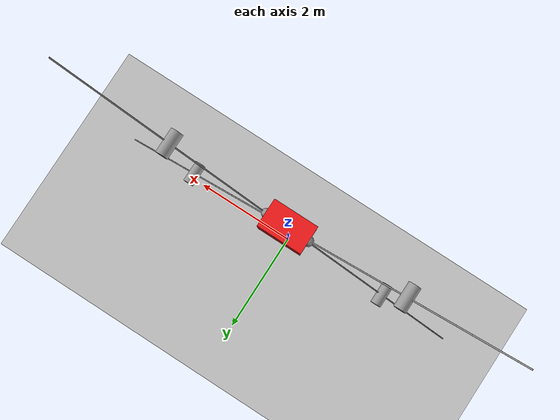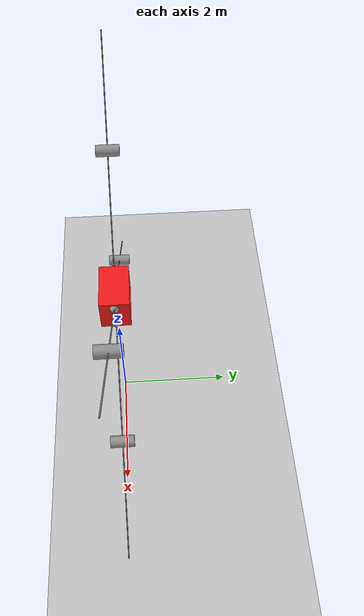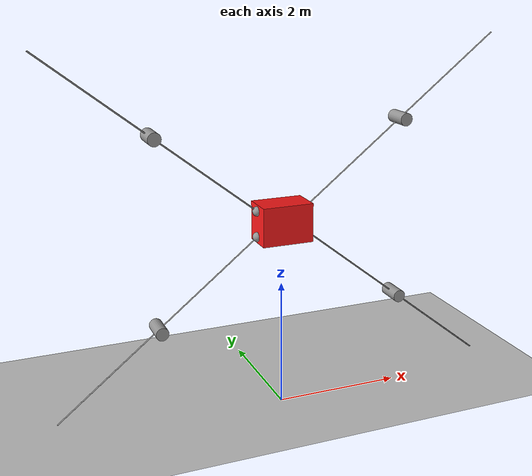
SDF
<?xml version="1.0" ?>
<sdf version="1.8">
    <world name="wallbot_world">
        <physics name="1ms" type="ode">
            <max_step_size>0.001</max_step_size>
            <real_time_factor>1.0</real_time_factor>
        </physics>
        <plugin
            filename="libignition-gazebo-physics-system.so"
            name="ignition::gazebo::systems::Physics">
        </plugin>
        <plugin
            filename="libignition-gazebo-user-commands-system.so"
            name="ignition::gazebo::systems::UserCommands">
        </plugin>
        <plugin
            filename="libignition-gazebo-scene-broadcaster-system.so"
            name="ignition::gazebo::systems::SceneBroadcaster">
        </plugin>
        <plugin
            filename="libignition-gazebo-sensors-system.so"
            name="ignition::gazebo::systems::Sensors">
            <render_engine>ogre2</render_engine>
        </plugin>
        <plugin
            filename="libignition-gazebo-contact-system.so"
            name="ignition::gazebo::systems::Contact">
        </plugin>

        <light type="directional" name="sun">
            <cast_shadows>true</cast_shadows>
            <pose>0 0 10 0 0 0</pose>
            <diffuse>0.8 0.8 0.8 1</diffuse>
            <specular>0.2 0.2 0.2 1</specular>
            <attenuation>
                <range>1000</range>
                <constant>0.9</constant>
                <linear>0.01</linear>
                <quadratic>0.001</quadratic>
            </attenuation>
            <direction>-0.5 0.1 -0.9</direction>
        </light>

        <model name="ground_plane">
            <static>true</static>
            <link name="link">
                <collision name="collision">
                <geometry>
                    <plane>
                    <normal>0 0 1</normal>
                    </plane>
                </geometry>
                </collision>
                <visual name="visual">
                <geometry>
                    <plane>
                    <normal>0 0 1</normal>
                    <size>100 100</size>
                    </plane>
                </geometry>
                <material>
                    <ambient>0.8 0.8 0.8 1</ambient>
                    <diffuse>0.8 0.8 0.8 1</diffuse>
                    <specular>0.8 0.8 0.8 1</specular>
                </material>
                </visual>
            </link>
        </model>

        <include>
          <uri>model://Wallbot_V3_Robot</uri>
          <name>wallbot</name>
          <pose>0 0 3 0 0 0</pose>
        </include>

    </world>
</sdf>

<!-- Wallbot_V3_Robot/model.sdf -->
<sdf version='1.7'>
  <model name='Wallbot_V2_Robot'>
    <link name='link_0'>
      <inertial>
        <mass>1</mass>
        <inertia>
          <ixx>0.166667</ixx>
          <ixy>0</ixy>
          <ixz>0</ixz>
          <iyy>0.166667</iyy>
          <iyz>0</iyz>
          <izz>0.166667</izz>
        </inertia>
        <pose>0 0 0 0 -0 0</pose>
      </inertial>
      <pose>0.015 0 0.005 0 -0 0</pose>
      <self_collide>0</self_collide>
      <kinematic>0</kinematic>
      <enable_wind>0</enable_wind>
      <visual name='visual'>
        <pose>0 0 0 0 -0 0</pose>
        <geometry>
          <box>
            <size>0.8 0.5 0.6</size>
          </box>
        </geometry>
        <material>
          <lighting>1</lighting>
          <script>
            <uri>file://media/materials/scripts/gazebo.material</uri>
            <name>Gazebo/Grey</name>
          </script>
          <shader type='pixel'>
            <normal_map>__default__</normal_map>
          </shader>
          <ambient>1 0.1 0.1 1</ambient>
          <diffuse>0.7 0.7 0.7 1</diffuse>
          <specular>0.01 0.01 0.01 1</specular>
          <emissive>0 0 0 1</emissive>
        </material>
        <transparency>0</transparency>
        <cast_shadows>1</cast_shadows>
      </visual>
      <collision name='collision'>
        <laser_retro>0</laser_retro>
        <max_contacts>10</max_contacts>
        <pose>0 0 0 0 -0 0</pose>
        <geometry>
          <box>
            <size>0.8 0.5 0.6</size>
          </box>
        </geometry>
        <surface>
          <friction>
            <ode>
              <mu>0</mu>
              <mu2>0</mu2>
              <fdir1>0 0 0</fdir1>
              <slip1>0</slip1>
              <slip2>0</slip2>
            </ode>
            <torsional>
              <coefficient>0</coefficient>
              <patch_radius>0</patch_radius>
              <surface_radius>0</surface_radius>
              <use_patch_radius>0</use_patch_radius>
              <ode>
                <slip>0</slip>
              </ode>
            </torsional>
          </friction>
          <bounce>
            <restitution_coefficient>0</restitution_coefficient>
            <threshold>1e+06</threshold>
          </bounce>
          <contact>
            <collide_without_contact>0</collide_without_contact>
            <collide_without_contact_bitmask>1</collide_without_contact_bitmask>
            <collide_bitmask>1</collide_bitmask>
            <ode>
              <soft_cfm>0</soft_cfm>
              <soft_erp>0.2</soft_erp>
              <kp>1e+13</kp>
              <kd>1</kd>
              <max_vel>0.01</max_vel>
              <min_depth>0</min_depth>
            </ode>
            <bullet>
              <split_impulse>1</split_impulse>
              <split_impulse_penetration_threshold>-0.01</split_impulse_penetration_threshold>
              <soft_cfm>0</soft_cfm>
              <soft_erp>0.2</soft_erp>
              <kp>1e+13</kp>
              <kd>1</kd>
            </bullet>
          </contact>
        </surface>
      </collision>
    </link>
    <link name='link_0_0'>
      <inertial>
        <mass>1</mass>
        <inertia>
          <ixx>0.145833</ixx>
          <ixy>0</ixy>
          <ixz>0</ixz>
          <iyy>0.145833</iyy>
          <iyz>0</iyz>
          <izz>0.125</izz>
        </inertia>
        <pose>0 0 -2 0 -0 0</pose>
      </inertial>
      <pose>0.415 0 0.205 3.14159 -0.901593 3.14159</pose>

      <self_collide>0</self_collide>
      <kinematic>0</kinematic>
      <enable_wind>0</enable_wind>
      <visual name='visual'>
        <pose>0 0 -2 0 -0 0</pose>
        <geometry>
          <cylinder>
            <radius>0.01</radius>
            <length>4</length>
          </cylinder>
        </geometry>
        <material>
          <lighting>1</lighting>
          <script>
            <uri>file://media/materials/scripts/gazebo.material</uri>
            <name>Gazebo/Grey</name>
          </script>
          <shader type='pixel'>
            <normal_map>__default__</normal_map>
          </shader>
          <ambient>0.3 0.3 0.3 1</ambient>
          <diffuse>0.7 0.7 0.7 1</diffuse>
          <specular>0.01 0.01 0.01 1</specular>
          <emissive>0 0 0 1</emissive>
        </material>
        <transparency>0</transparency>
        <cast_shadows>1</cast_shadows>
      </visual>
      <collision name='collision'>
        <laser_retro>0</laser_retro>
        <max_contacts>10</max_contacts>
        <pose>0 0 -2 0 -0 0</pose>
        <geometry>
          <cylinder>
            <radius>0.01</radius>
            <length>4</length>
          </cylinder>
        </geometry>
        <surface>
          <friction>
            <ode>
              <mu>0</mu>
              <mu2>0</mu2>
              <fdir1>0 0 0</fdir1>
              <slip1>0</slip1>
              <slip2>0</slip2>
            </ode>
            <torsional>
              <coefficient>0</coefficient>
              <patch_radius>0</patch_radius>
              <surface_radius>0</surface_radius>
              <use_patch_radius>0</use_patch_radius>
              <ode>
                <slip>0</slip>
              </ode>
            </torsional>
          </friction>
          <bounce>
            <restitution_coefficient>0</restitution_coefficient>
            <threshold>1e+06</threshold>
          </bounce>
          <contact>
            <collide_without_contact>0</collide_without_contact>
            <collide_without_contact_bitmask>1</collide_without_contact_bitmask>
            <collide_bitmask>1</collide_bitmask>
            <ode>
              <soft_cfm>0</soft_cfm>
              <soft_erp>0.2</soft_erp>
              <kp>1e+13</kp>
              <kd>1</kd>
              <max_vel>0.01</max_vel>
              <min_depth>0</min_depth>
            </ode>
            <bullet>
              <split_impulse>1</split_impulse>
              <split_impulse_penetration_threshold>-0.01</split_impulse_penetration_threshold>
              <soft_cfm>0</soft_cfm>
              <soft_erp>0.2</soft_erp>
              <kp>1e+13</kp>
              <kd>1</kd>
            </bullet>
          </contact>
        </surface>
      </collision>
    </link>
    <link name='link_0_0_clone'>
      <inertial>
        <mass>1</mass>
        <inertia>
          <ixx>0.145833</ixx>
          <ixy>0</ixy>
          <ixz>0</ixz>
          <iyy>0.145833</iyy>
          <iyz>0</iyz>
          <izz>0.125</izz>
        </inertia>
        <pose>0 0 -2 0 -0 0</pose>
      </inertial>
      <pose>-0.385 0 0.205 -3.14159 0.9 -3.14159</pose>

      <self_collide>0</self_collide>
      <kinematic>0</kinematic>
      <enable_wind>0</enable_wind>
      <visual name='visual_0'>
        <pose>0 0 -2 0 -0 0</pose>
        <geometry>
          <cylinder>
            <radius>0.01</radius>
            <length>4</length>
          </cylinder>
        </geometry>
        <material>
          <lighting>1</lighting>
          <script>
            <uri>file://media/materials/scripts/gazebo.material</uri>
            <name>Gazebo/Grey</name>
          </script>
          <shader type='pixel'>
            <normal_map>__default__</normal_map>
          </shader>
          <ambient>0.3 0.3 0.3 1</ambient>
          <diffuse>0.7 0.7 0.7 1</diffuse>
          <specular>0.01 0.01 0.01 1</specular>
          <emissive>0 0 0 1</emissive>
        </material>
        <transparency>0</transparency>
        <cast_shadows>1</cast_shadows>
      </visual>
      <collision name='collision'>
        <laser_retro>0</laser_retro>
        <max_contacts>10</max_contacts>
        <pose>0 0 -2 0 -0 0</pose>
        <geometry>
          <cylinder>
            <radius>0.01</radius>
            <length>4</length>
          </cylinder>
        </geometry>
        <surface>
          <friction>
            <ode>
              <mu>0</mu>
              <mu2>0</mu2>
              <fdir1>0 0 0</fdir1>
              <slip1>0</slip1>
              <slip2>0</slip2>
            </ode>
            <torsional>
              <coefficient>0</coefficient>
              <patch_radius>0</patch_radius>
              <surface_radius>0</surface_radius>
              <use_patch_radius>0</use_patch_radius>
              <ode>
                <slip>0</slip>
              </ode>
            </torsional>
          </friction>
          <bounce>
            <restitution_coefficient>0</restitution_coefficient>
            <threshold>1e+06</threshold>
          </bounce>
          <contact>
            <collide_without_contact>0</collide_without_contact>
            <collide_without_contact_bitmask>1</collide_without_contact_bitmask>
            <collide_bitmask>1</collide_bitmask>
            <ode>
              <soft_cfm>0</soft_cfm>
              <soft_erp>0.2</soft_erp>
              <kp>1e+13</kp>
              <kd>1</kd>
              <max_vel>0.01</max_vel>
              <min_depth>0</min_depth>
            </ode>
            <bullet>
              <split_impulse>1</split_impulse>
              <split_impulse_penetration_threshold>-0.01</split_impulse_penetration_threshold>
              <soft_cfm>0</soft_cfm>
              <soft_erp>0.2</soft_erp>
              <kp>1e+13</kp>
              <kd>1</kd>
            </bullet>
          </contact>
        </surface>
      </collision>
    </link>
    <link name='link_0_0_clone_0'>
      <inertial>
        <mass>1</mass>
        <inertia>
          <ixx>0.145833</ixx>
          <ixy>0</ixy>
          <ixz>0</ixz>
          <iyy>0.145833</iyy>
          <iyz>0</iyz>
          <izz>0.125</izz>
        </inertia>
        <pose>0 0 -2 0 -0 0</pose>
      </inertial>
      <pose>0.415 0 -0.195 1.1e-05 -0.9 -5e-06</pose>

      <self_collide>0</self_collide>
      <kinematic>0</kinematic>
      <enable_wind>0</enable_wind>
      <visual name='visual_0'>
        <pose>0 0 -2 0 -0 0</pose>
        <geometry>
          <cylinder>
            <radius>0.01</radius>
            <length>4</length>
          </cylinder>
        </geometry>
        <material>
          <lighting>1</lighting>
          <script>
            <uri>file://media/materials/scripts/gazebo.material</uri>
            <name>Gazebo/Grey</name>
          </script>
          <shader type='pixel'>
            <normal_map>__default__</normal_map>
          </shader>
          <ambient>0.3 0.3 0.3 1</ambient>
          <diffuse>0.7 0.7 0.7 1</diffuse>
          <specular>0.01 0.01 0.01 1</specular>
          <emissive>0 0 0 1</emissive>
        </material>
        <transparency>0</transparency>
        <cast_shadows>1</cast_shadows>
      </visual>
      <collision name='collision'>
        <laser_retro>0</laser_retro>
        <max_contacts>10</max_contacts>
        <pose>0 0 -2 0 -0 0</pose>
        <geometry>
          <cylinder>
            <radius>0.01</radius>
            <length>4</length>
          </cylinder>
        </geometry>
        <surface>
          <friction>
            <ode>
              <mu>0</mu>
              <mu2>0</mu2>
              <fdir1>0 0 0</fdir1>
              <slip1>0</slip1>
              <slip2>0</slip2>
            </ode>
            <torsional>
              <coefficient>0</coefficient>
              <patch_radius>0</patch_radius>
              <surface_radius>0</surface_radius>
              <use_patch_radius>0</use_patch_radius>
              <ode>
                <slip>0</slip>
              </ode>
            </torsional>
          </friction>
          <bounce>
            <restitution_coefficient>0</restitution_coefficient>
            <threshold>1e+06</threshold>
          </bounce>
          <contact>
            <collide_without_contact>0</collide_without_contact>
            <collide_without_contact_bitmask>1</collide_without_contact_bitmask>
            <collide_bitmask>1</collide_bitmask>
            <ode>
              <soft_cfm>0</soft_cfm>
              <soft_erp>0.2</soft_erp>
              <kp>1e+13</kp>
              <kd>1</kd>
              <max_vel>0.01</max_vel>
              <min_depth>0</min_depth>
            </ode>
            <bullet>
              <split_impulse>1</split_impulse>
              <split_impulse_penetration_threshold>-0.01</split_impulse_penetration_threshold>
              <soft_cfm>0</soft_cfm>
              <soft_erp>0.2</soft_erp>
              <kp>1e+13</kp>
              <kd>1</kd>
            </bullet>
          </contact>
        </surface>
      </collision>
    </link>
    <link name='link_0_0_clone_1'>
      <inertial>
        <mass>1</mass>
        <inertia>
          <ixx>0.145833</ixx>
          <ixy>0</ixy>
          <ixz>0</ixz>
          <iyy>0.145833</iyy>
          <iyz>0</iyz>
          <izz>0.125</izz>
        </inertia>
        <pose>0 0 -2 0 -0 0</pose>
      </inertial>
      <pose>-0.385 0 -0.195 1.1e-05 0.9 -5e-06</pose>

      <self_collide>0</self_collide>
      <kinematic>0</kinematic>
      <enable_wind>0</enable_wind>
      <visual name='visual_0'>
        <pose>0 0 -2 0 -0 0</pose>
        <geometry>
          <cylinder>
            <radius>0.01</radius>
            <length>4</length>
          </cylinder>
        </geometry>
        <material>
          <lighting>1</lighting>
          <script>
            <uri>file://media/materials/scripts/gazebo.material</uri>
            <name>Gazebo/Grey</name>
          </script>
          <shader type='pixel'>
            <normal_map>__default__</normal_map>
          </shader>
          <ambient>0.3 0.3 0.3 1</ambient>
          <diffuse>0.7 0.7 0.7 1</diffuse>
          <specular>0.01 0.01 0.01 1</specular>
          <emissive>0 0 0 1</emissive>
        </material>
        <transparency>0</transparency>
        <cast_shadows>1</cast_shadows>
      </visual>
      <collision name='collision'>
        <laser_retro>0</laser_retro>
        <max_contacts>10</max_contacts>
        <pose>0 0 -2 0 -0 0</pose>
        <geometry>
          <cylinder>
            <radius>0.01</radius>
            <length>4</length>
          </cylinder>
        </geometry>
        <surface>
          <friction>
            <ode>
              <mu>0</mu>
              <mu2>0</mu2>
              <fdir1>0 0 0</fdir1>
              <slip1>0</slip1>
              <slip2>0</slip2>
            </ode>
            <torsional>
              <coefficient>0</coefficient>
              <patch_radius>0</patch_radius>
              <surface_radius>0</surface_radius>
              <use_patch_radius>0</use_patch_radius>
              <ode>
                <slip>0</slip>
              </ode>
            </torsional>
          </friction>
          <bounce>
            <restitution_coefficient>0</restitution_coefficient>
            <threshold>1e+06</threshold>
          </bounce>
          <contact>
            <collide_without_contact>0</collide_without_contact>
            <collide_without_contact_bitmask>1</collide_without_contact_bitmask>
            <collide_bitmask>1</collide_bitmask>
            <ode>
              <soft_cfm>0</soft_cfm>
              <soft_erp>0.2</soft_erp>
              <kp>1e+13</kp>
              <kd>1</kd>
              <max_vel>0.01</max_vel>
              <min_depth>0</min_depth>
            </ode>
            <bullet>
              <split_impulse>1</split_impulse>
              <split_impulse_penetration_threshold>-0.01</split_impulse_penetration_threshold>
              <soft_cfm>0</soft_cfm>
              <soft_erp>0.2</soft_erp>
              <kp>1e+13</kp>
              <kd>1</kd>
            </bullet>
          </contact>
        </surface>
      </collision>
    </link>
    <link name='link_1'>
      <inertial>
        <mass>1</mass>
        <inertia>
          <ixx>0.1</ixx>
          <ixy>0</ixy>
          <ixz>0</ixz>
          <iyy>0.1</iyy>
          <iyz>0</iyz>
          <izz>0.1</izz>
        </inertia>
        <pose>0 0 0 0 -0 0</pose>
      </inertial>
      <pose>-0.385 0 0.205 0 -0 0</pose>

      <self_collide>0</self_collide>
      <kinematic>0</kinematic>
      <enable_wind>0</enable_wind>
      <visual name='visual'>
        <pose>0 0 0 0 -0 0</pose>
        <geometry>
          <sphere>
            <radius>0.075</radius>
          </sphere>
        </geometry>
        <material>
          <lighting>1</lighting>
          <script>
            <uri>file://media/materials/scripts/gazebo.material</uri>
            <name>Gazebo/Grey</name>
          </script>
          <shader type='pixel'>
            <normal_map>__default__</normal_map>
          </shader>
          <ambient>0.3 0.3 0.3 1</ambient>
          <diffuse>0.7 0.7 0.7 1</diffuse>
          <specular>0.01 0.01 0.01 1</specular>
          <emissive>0 0 0 1</emissive>
        </material>
        <transparency>0</transparency>
        <cast_shadows>1</cast_shadows>
      </visual>
      <collision name='collision'>
        <laser_retro>0</laser_retro>
        <max_contacts>10</max_contacts>
        <pose>0 0 0 0 -0 0</pose>
        <geometry>
          <sphere>
            <radius>0.075</radius>
          </sphere>
        </geometry>
        <surface>
          <friction>
            <ode>
              <mu>0</mu>
              <mu2>0</mu2>
              <fdir1>0 0 0</fdir1>
              <slip1>0</slip1>
              <slip2>0</slip2>
            </ode>
            <torsional>
              <coefficient>0</coefficient>
              <patch_radius>0</patch_radius>
              <surface_radius>0</surface_radius>
              <use_patch_radius>0</use_patch_radius>
              <ode>
                <slip>0</slip>
              </ode>
            </torsional>
          </friction>
          <bounce>
            <restitution_coefficient>0</restitution_coefficient>
            <threshold>1e+06</threshold>
          </bounce>
          <contact>
            <collide_without_contact>0</collide_without_contact>
            <collide_without_contact_bitmask>1</collide_without_contact_bitmask>
            <collide_bitmask>1</collide_bitmask>
            <ode>
              <soft_cfm>0</soft_cfm>
              <soft_erp>0.2</soft_erp>
              <kp>1e+13</kp>
              <kd>1</kd>
              <max_vel>0.01</max_vel>
              <min_depth>0</min_depth>
            </ode>
            <bullet>
              <split_impulse>1</split_impulse>
              <split_impulse_penetration_threshold>-0.01</split_impulse_penetration_threshold>
              <soft_cfm>0</soft_cfm>
              <soft_erp>0.2</soft_erp>
              <kp>1e+13</kp>
              <kd>1</kd>
            </bullet>
          </contact>
        </surface>
      </collision>
    </link>
    <link name='link_1_0'>
      <inertial>
        <mass>1</mass>
        <inertia>
          <ixx>0.1</ixx>
          <ixy>0</ixy>
          <ixz>0</ixz>
          <iyy>0.1</iyy>
          <iyz>0</iyz>
          <izz>0.1</izz>
        </inertia>
        <pose>0 0 0 0 -0 0</pose>
      </inertial>
      <pose>-1.95165 1e-06 1.44822 0 -0 0</pose>

      <self_collide>0</self_collide>
      <kinematic>0</kinematic>
      <enable_wind>0</enable_wind>
      <visual name='visual'>
        <pose>0 0 0 0 -0 0</pose>
        <geometry>
          <sphere>
            <radius>0.01</radius>
          </sphere>
        </geometry>
        <material>
          <lighting>1</lighting>
          <script>
            <uri>file://media/materials/scripts/gazebo.material</uri>
            <name>Gazebo/Grey</name>
          </script>
          <shader type='pixel'>
            <normal_map>__default__</normal_map>
          </shader>
          <ambient>0.3 0.3 0.3 1</ambient>
          <diffuse>0.7 0.7 0.7 1</diffuse>
          <specular>0.01 0.01 0.01 1</specular>
          <emissive>0 0 0 1</emissive>
        </material>
        <transparency>0</transparency>
        <cast_shadows>1</cast_shadows>
      </visual>
      <collision name='collision'>
        <laser_retro>0</laser_retro>
        <max_contacts>10</max_contacts>
        <pose>0 0 0 0 -0 0</pose>
        <geometry>
          <sphere>
            <radius>0.01</radius>
          </sphere>
        </geometry>
        <surface>
          <friction>
            <ode>
              <mu>0</mu>
              <mu2>0</mu2>
              <fdir1>0 0 0</fdir1>
              <slip1>0</slip1>
              <slip2>0</slip2>
            </ode>
            <torsional>
              <coefficient>0</coefficient>
              <patch_radius>0</patch_radius>
              <surface_radius>0</surface_radius>
              <use_patch_radius>0</use_patch_radius>
              <ode>
                <slip>0</slip>
              </ode>
            </torsional>
          </friction>
          <bounce>
            <restitution_coefficient>0</restitution_coefficient>
            <threshold>1e+06</threshold>
          </bounce>
          <contact>
            <collide_without_contact>0</collide_without_contact>
            <collide_without_contact_bitmask>1</collide_without_contact_bitmask>
            <collide_bitmask>1</collide_bitmask>
            <ode>
              <soft_cfm>0</soft_cfm>
              <soft_erp>0.2</soft_erp>
              <kp>1e+13</kp>
              <kd>1</kd>
              <max_vel>0.01</max_vel>
              <min_depth>0</min_depth>
            </ode>
            <bullet>
              <split_impulse>1</split_impulse>
              <split_impulse_penetration_threshold>-0.01</split_impulse_penetration_threshold>
              <soft_cfm>0</soft_cfm>
              <soft_erp>0.2</soft_erp>
              <kp>1e+13</kp>
              <kd>1</kd>
            </bullet>
          </contact>
        </surface>
      </collision>
    </link>
    <link name='link_1_0_clone'>
      <inertial>
        <mass>1</mass>
        <inertia>
          <ixx>0.1</ixx>
          <ixy>0</ixy>
          <ixz>0</ixz>
          <iyy>0.1</iyy>
          <iyz>0</iyz>
          <izz>0.1</izz>
        </inertia>
        <pose>0 0 0 0 -0 0</pose>
      </inertial>
      <pose>1.98363 -1e-05 1.44572 0 -0 0</pose>

      <self_collide>0</self_collide>
      <kinematic>0</kinematic>
      <enable_wind>0</enable_wind>
      <visual name='visual'>
        <pose>0 0 0 0 -0 0</pose>
        <geometry>
          <sphere>
            <radius>0.01</radius>
          </sphere>
        </geometry>
        <material>
          <lighting>1</lighting>
          <script>
            <uri>file://media/materials/scripts/gazebo.material</uri>
            <name>Gazebo/Grey</name>
          </script>
          <shader type='pixel'>
            <normal_map>__default__</normal_map>
          </shader>
          <ambient>0.3 0.3 0.3 1</ambient>
          <diffuse>0.7 0.7 0.7 1</diffuse>
          <specular>0.01 0.01 0.01 1</specular>
          <emissive>0 0 0 1</emissive>
        </material>
        <transparency>0</transparency>
        <cast_shadows>1</cast_shadows>
      </visual>
      <collision name='collision'>
        <laser_retro>0</laser_retro>
        <max_contacts>10</max_contacts>
        <pose>0 0 0 0 -0 0</pose>
        <geometry>
          <sphere>
            <radius>0.01</radius>
          </sphere>
        </geometry>
        <surface>
          <friction>
            <ode>
              <mu>0</mu>
              <mu2>0</mu2>
              <fdir1>0 0 0</fdir1>
              <slip1>0</slip1>
              <slip2>0</slip2>
            </ode>
            <torsional>
              <coefficient>0</coefficient>
              <patch_radius>0</patch_radius>
              <surface_radius>0</surface_radius>
              <use_patch_radius>0</use_patch_radius>
              <ode>
                <slip>0</slip>
              </ode>
            </torsional>
          </friction>
          <bounce>
            <restitution_coefficient>0</restitution_coefficient>
            <threshold>1e+06</threshold>
          </bounce>
          <contact>
            <collide_without_contact>0</collide_without_contact>
            <collide_without_contact_bitmask>1</collide_without_contact_bitmask>
            <collide_bitmask>1</collide_bitmask>
            <ode>
              <soft_cfm>0</soft_cfm>
              <soft_erp>0.2</soft_erp>
              <kp>1e+13</kp>
              <kd>1</kd>
              <max_vel>0.01</max_vel>
              <min_depth>0</min_depth>
            </ode>
            <bullet>
              <split_impulse>1</split_impulse>
              <split_impulse_penetration_threshold>-0.01</split_impulse_penetration_threshold>
              <soft_cfm>0</soft_cfm>
              <soft_erp>0.2</soft_erp>
              <kp>1e+13</kp>
              <kd>1</kd>
            </bullet>
          </contact>
        </surface>
      </collision>
    </link>
    <link name='link_1_0_clone_0'>
      <inertial>
        <mass>1</mass>
        <inertia>
          <ixx>0.1</ixx>
          <ixy>0</ixy>
          <ixz>0</ixz>
          <iyy>0.1</iyy>
          <iyz>0</iyz>
          <izz>0.1</izz>
        </inertia>
        <pose>0 0 0 0 -0 0</pose>
      </inertial>
      <pose>1.98165 1.4e-05 -1.43822 1.1e-05 -0.9 -5e-06</pose>

      <self_collide>0</self_collide>
      <kinematic>0</kinematic>
      <enable_wind>0</enable_wind>
      <visual name='visual'>
        <pose>0 0 0 0 -0 0</pose>
        <geometry>
          <sphere>
            <radius>0.01</radius>
          </sphere>
        </geometry>
        <material>
          <lighting>1</lighting>
          <script>
            <uri>file://media/materials/scripts/gazebo.material</uri>
            <name>Gazebo/Grey</name>
          </script>
          <shader type='pixel'>
            <normal_map>__default__</normal_map>
          </shader>
          <ambient>0.3 0.3 0.3 1</ambient>
          <diffuse>0.7 0.7 0.7 1</diffuse>
          <specular>0.01 0.01 0.01 1</specular>
          <emissive>0 0 0 1</emissive>
        </material>
        <transparency>0</transparency>
        <cast_shadows>1</cast_shadows>
      </visual>
      <collision name='collision'>
        <laser_retro>0</laser_retro>
        <max_contacts>10</max_contacts>
        <pose>0 0 0 0 -0 0</pose>
        <geometry>
          <sphere>
            <radius>0.01</radius>
          </sphere>
        </geometry>
        <surface>
          <friction>
            <ode>
              <mu>0</mu>
              <mu2>0</mu2>
              <fdir1>0 0 0</fdir1>
              <slip1>0</slip1>
              <slip2>0</slip2>
            </ode>
            <torsional>
              <coefficient>0</coefficient>
              <patch_radius>0</patch_radius>
              <surface_radius>0</surface_radius>
              <use_patch_radius>0</use_patch_radius>
              <ode>
                <slip>0</slip>
              </ode>
            </torsional>
          </friction>
          <bounce>
            <restitution_coefficient>0</restitution_coefficient>
            <threshold>1e+06</threshold>
          </bounce>
          <contact>
            <collide_without_contact>0</collide_without_contact>
            <collide_without_contact_bitmask>1</collide_without_contact_bitmask>
            <collide_bitmask>1</collide_bitmask>
            <ode>
              <soft_cfm>0</soft_cfm>
              <soft_erp>0.2</soft_erp>
              <kp>1e+13</kp>
              <kd>1</kd>
              <max_vel>0.01</max_vel>
              <min_depth>0</min_depth>
            </ode>
            <bullet>
              <split_impulse>1</split_impulse>
              <split_impulse_penetration_threshold>-0.01</split_impulse_penetration_threshold>
              <soft_cfm>0</soft_cfm>
              <soft_erp>0.2</soft_erp>
              <kp>1e+13</kp>
              <kd>1</kd>
            </bullet>
          </contact>
        </surface>
      </collision>
    </link>
    <link name='link_1_0_clone_1'>
      <inertial>
        <mass>1</mass>
        <inertia>
          <ixx>0.1</ixx>
          <ixy>0</ixy>
          <ixz>0</ixz>
          <iyy>0.1</iyy>
          <iyz>0</iyz>
          <izz>0.1</izz>
        </inertia>
        <pose>0 0 0 0 -0 0</pose>
      </inertial>
      <pose>-1.95165 3e-05 -1.43822 1.1e-05 0.9 -5e-06</pose>

      <self_collide>0</self_collide>
      <kinematic>0</kinematic>
      <enable_wind>0</enable_wind>
      <visual name='visual'>
        <pose>0 0 0 0 -0 0</pose>
        <geometry>
          <sphere>
            <radius>0.01</radius>
          </sphere>
        </geometry>
        <material>
          <lighting>1</lighting>
          <script>
            <uri>file://media/materials/scripts/gazebo.material</uri>
            <name>Gazebo/Grey</name>
          </script>
          <shader type='pixel'>
            <normal_map>__default__</normal_map>
          </shader>
          <ambient>0.3 0.3 0.3 1</ambient>
          <diffuse>0.7 0.7 0.7 1</diffuse>
          <specular>0.01 0.01 0.01 1</specular>
          <emissive>0 0 0 1</emissive>
        </material>
        <transparency>0</transparency>
        <cast_shadows>1</cast_shadows>
      </visual>
      <collision name='collision'>
        <laser_retro>0</laser_retro>
        <max_contacts>10</max_contacts>
        <pose>0 0 0 0 -0 0</pose>
        <geometry>
          <sphere>
            <radius>0.01</radius>
          </sphere>
        </geometry>
        <surface>
          <friction>
            <ode>
              <mu>0</mu>
              <mu2>0</mu2>
              <fdir1>0 0 0</fdir1>
              <slip1>0</slip1>
              <slip2>0</slip2>
            </ode>
            <torsional>
              <coefficient>0</coefficient>
              <patch_radius>0</patch_radius>
              <surface_radius>0</surface_radius>
              <use_patch_radius>0</use_patch_radius>
              <ode>
                <slip>0</slip>
              </ode>
            </torsional>
          </friction>
          <bounce>
            <restitution_coefficient>0</restitution_coefficient>
            <threshold>1e+06</threshold>
          </bounce>
          <contact>
            <collide_without_contact>0</collide_without_contact>
            <collide_without_contact_bitmask>1</collide_without_contact_bitmask>
            <collide_bitmask>1</collide_bitmask>
            <ode>
              <soft_cfm>0</soft_cfm>
              <soft_erp>0.2</soft_erp>
              <kp>1e+13</kp>
              <kd>1</kd>
              <max_vel>0.01</max_vel>
              <min_depth>0</min_depth>
            </ode>
            <bullet>
              <split_impulse>1</split_impulse>
              <split_impulse_penetration_threshold>-0.01</split_impulse_penetration_threshold>
              <soft_cfm>0</soft_cfm>
              <soft_erp>0.2</soft_erp>
              <kp>1e+13</kp>
              <kd>1</kd>
            </bullet>
          </contact>
        </surface>
      </collision>
    </link>
    <link name='link_1_clone'>
      <inertial>
        <mass>1</mass>
        <inertia>
          <ixx>0.1</ixx>
          <ixy>0</ixy>
          <ixz>0</ixz>
          <iyy>0.1</iyy>
          <iyz>0</iyz>
          <izz>0.1</izz>
        </inertia>
        <pose>0 0 0 0 -0 0</pose>
      </inertial>
      <pose>0.415 0 0.205 0 -0 0</pose>

      <self_collide>0</self_collide>
      <kinematic>0</kinematic>
      <enable_wind>0</enable_wind>
      <visual name='visual'>
        <pose>0 0 0 0 -0 0</pose>
        <geometry>
          <sphere>
            <radius>0.075</radius>
          </sphere>
        </geometry>
        <material>
          <lighting>1</lighting>
          <script>
            <uri>file://media/materials/scripts/gazebo.material</uri>
            <name>Gazebo/Grey</name>
          </script>
          <shader type='pixel'>
            <normal_map>__default__</normal_map>
          </shader>
          <ambient>0.3 0.3 0.3 1</ambient>
          <diffuse>0.7 0.7 0.7 1</diffuse>
          <specular>0.01 0.01 0.01 1</specular>
          <emissive>0 0 0 1</emissive>
        </material>
        <transparency>0</transparency>
        <cast_shadows>1</cast_shadows>
      </visual>
      <collision name='collision'>
        <laser_retro>0</laser_retro>
        <max_contacts>10</max_contacts>
        <pose>0 0 0 0 -0 0</pose>
        <geometry>
          <sphere>
            <radius>0.075</radius>
          </sphere>
        </geometry>
        <surface>
          <friction>
            <ode>
              <mu>0</mu>
              <mu2>0</mu2>
              <fdir1>0 0 0</fdir1>
              <slip1>0</slip1>
              <slip2>0</slip2>
            </ode>
            <torsional>
              <coefficient>0</coefficient>
              <patch_radius>0</patch_radius>
              <surface_radius>0</surface_radius>
              <use_patch_radius>0</use_patch_radius>
              <ode>
                <slip>0</slip>
              </ode>
            </torsional>
          </friction>
          <bounce>
            <restitution_coefficient>0</restitution_coefficient>
            <threshold>1e+06</threshold>
          </bounce>
          <contact>
            <collide_without_contact>0</collide_without_contact>
            <collide_without_contact_bitmask>1</collide_without_contact_bitmask>
            <collide_bitmask>1</collide_bitmask>
            <ode>
              <soft_cfm>0</soft_cfm>
              <soft_erp>0.2</soft_erp>
              <kp>1e+13</kp>
              <kd>1</kd>
              <max_vel>0.01</max_vel>
              <min_depth>0</min_depth>
            </ode>
            <bullet>
              <split_impulse>1</split_impulse>
              <split_impulse_penetration_threshold>-0.01</split_impulse_penetration_threshold>
              <soft_cfm>0</soft_cfm>
              <soft_erp>0.2</soft_erp>
              <kp>1e+13</kp>
              <kd>1</kd>
            </bullet>
          </contact>
        </surface>
      </collision>
    </link>
    <link name='link_1_clone_0'>
      <inertial>
        <mass>1</mass>
        <inertia>
          <ixx>0.1</ixx>
          <ixy>0</ixy>
          <ixz>0</ixz>
          <iyy>0.1</iyy>
          <iyz>0</iyz>
          <izz>0.1</izz>
        </inertia>
        <pose>0 0 0 0 -0 0</pose>
      </inertial>
      <pose>0.415 0 -0.195 0 -0 0</pose>

      <self_collide>0</self_collide>
      <kinematic>0</kinematic>
      <enable_wind>0</enable_wind>
      <visual name='visual'>
        <pose>0 0 0 0 -0 0</pose>
        <geometry>
          <sphere>
            <radius>0.075</radius>
          </sphere>
        </geometry>
        <material>
          <lighting>1</lighting>
          <script>
            <uri>file://media/materials/scripts/gazebo.material</uri>
            <name>Gazebo/Grey</name>
          </script>
          <shader type='pixel'>
            <normal_map>__default__</normal_map>
          </shader>
          <ambient>0.3 0.3 0.3 1</ambient>
          <diffuse>0.7 0.7 0.7 1</diffuse>
          <specular>0.01 0.01 0.01 1</specular>
          <emissive>0 0 0 1</emissive>
        </material>
        <transparency>0</transparency>
        <cast_shadows>1</cast_shadows>
      </visual>
      <collision name='collision'>
        <laser_retro>0</laser_retro>
        <max_contacts>10</max_contacts>
        <pose>0 0 0 0 -0 0</pose>
        <geometry>
          <sphere>
            <radius>0.075</radius>
          </sphere>
        </geometry>
        <surface>
          <friction>
            <ode>
              <mu>0</mu>
              <mu2>0</mu2>
              <fdir1>0 0 0</fdir1>
              <slip1>0</slip1>
              <slip2>0</slip2>
            </ode>
            <torsional>
              <coefficient>0</coefficient>
              <patch_radius>0</patch_radius>
              <surface_radius>0</surface_radius>
              <use_patch_radius>0</use_patch_radius>
              <ode>
                <slip>0</slip>
              </ode>
            </torsional>
          </friction>
          <bounce>
            <restitution_coefficient>0</restitution_coefficient>
            <threshold>1e+06</threshold>
          </bounce>
          <contact>
            <collide_without_contact>0</collide_without_contact>
            <collide_without_contact_bitmask>1</collide_without_contact_bitmask>
            <collide_bitmask>1</collide_bitmask>
            <ode>
              <soft_cfm>0</soft_cfm>
              <soft_erp>0.2</soft_erp>
              <kp>1e+13</kp>
              <kd>1</kd>
              <max_vel>0.01</max_vel>
              <min_depth>0</min_depth>
            </ode>
            <bullet>
              <split_impulse>1</split_impulse>
              <split_impulse_penetration_threshold>-0.01</split_impulse_penetration_threshold>
              <soft_cfm>0</soft_cfm>
              <soft_erp>0.2</soft_erp>
              <kp>1e+13</kp>
              <kd>1</kd>
            </bullet>
          </contact>
        </surface>
      </collision>
    </link>
    <link name='link_1_clone_1'>
      <inertial>
        <mass>1</mass>
        <inertia>
          <ixx>0.1</ixx>
          <ixy>0</ixy>
          <ixz>0</ixz>
          <iyy>0.1</iyy>
          <iyz>0</iyz>
          <izz>0.1</izz>
        </inertia>
        <pose>0 0 0 0 -0 0</pose>
      </inertial>
      <pose>-0.385 0 -0.195 0 -0 0</pose>

      <self_collide>0</self_collide>
      <kinematic>0</kinematic>
      <enable_wind>0</enable_wind>
      <visual name='visual'>
        <pose>0 0 0 0 -0 0</pose>
        <geometry>
          <sphere>
            <radius>0.075</radius>
          </sphere>
        </geometry>
        <material>
          <lighting>1</lighting>
          <script>
            <uri>file://media/materials/scripts/gazebo.material</uri>
            <name>Gazebo/Grey</name>
          </script>
          <shader type='pixel'>
            <normal_map>__default__</normal_map>
          </shader>
          <ambient>0.3 0.3 0.3 1</ambient>
          <diffuse>0.7 0.7 0.7 1</diffuse>
          <specular>0.01 0.01 0.01 1</specular>
          <emissive>0 0 0 1</emissive>
        </material>
        <transparency>0</transparency>
        <cast_shadows>1</cast_shadows>
      </visual>
      <collision name='collision'>
        <laser_retro>0</laser_retro>
        <max_contacts>10</max_contacts>
        <pose>0 0 0 0 -0 0</pose>
        <geometry>
          <sphere>
            <radius>0.075</radius>
          </sphere>
        </geometry>
        <surface>
          <friction>
            <ode>
              <mu>0</mu>
              <mu2>0</mu2>
              <fdir1>0 0 0</fdir1>
              <slip1>0</slip1>
              <slip2>0</slip2>
            </ode>
            <torsional>
              <coefficient>0</coefficient>
              <patch_radius>0</patch_radius>
              <surface_radius>0</surface_radius>
              <use_patch_radius>0</use_patch_radius>
              <ode>
                <slip>0</slip>
              </ode>
            </torsional>
          </friction>
          <bounce>
            <restitution_coefficient>0</restitution_coefficient>
            <threshold>1e+06</threshold>
          </bounce>
          <contact>
            <collide_without_contact>0</collide_without_contact>
            <collide_without_contact_bitmask>1</collide_without_contact_bitmask>
            <collide_bitmask>1</collide_bitmask>
            <ode>
              <soft_cfm>0</soft_cfm>
              <soft_erp>0.2</soft_erp>
              <kp>1e+13</kp>
              <kd>1</kd>
              <max_vel>0.01</max_vel>
              <min_depth>0</min_depth>
            </ode>
            <bullet>
              <split_impulse>1</split_impulse>
              <split_impulse_penetration_threshold>-0.01</split_impulse_penetration_threshold>
              <soft_cfm>0</soft_cfm>
              <soft_erp>0.2</soft_erp>
              <kp>1e+13</kp>
              <kd>1</kd>
            </bullet>
          </contact>
        </surface>
      </collision>
    </link>
    <link name='link_3'>
      <inertial>
        <mass>1</mass>
        <inertia>
          <ixx>0.145833</ixx>
          <ixy>0</ixy>
          <ixz>0</ixz>
          <iyy>0.145833</iyy>
          <iyz>0</iyz>
          <izz>0.125</izz>
        </inertia>
        <pose>0 0 0 0 -0 0</pose>
      </inertial>
      <pose>-1.95165 1e-06 1.44822 0 -0 0</pose>

      <self_collide>0</self_collide>
      <kinematic>1</kinematic>
      <enable_wind>0</enable_wind>
      <visual name='visual'>
        <pose>0 0 0 1.57 -0 0</pose>
        <geometry>
          <cylinder>
            <radius>0.1</radius>
            <length>0.4</length>
          </cylinder>
        </geometry>
        <material>
          <lighting>1</lighting>
          <script>
            <uri>file://media/materials/scripts/gazebo.material</uri>
            <name>Gazebo/Grey</name>
          </script>
          <shader type='pixel'>
            <normal_map>__default__</normal_map>
          </shader>
          <ambient>0.3 0.3 0.3 1</ambient>
          <diffuse>0.7 0.7 0.7 1</diffuse>
          <specular>0.01 0.01 0.01 1</specular>
          <emissive>0 0 0 1</emissive>
        </material>
        <transparency>0</transparency>
        <cast_shadows>1</cast_shadows>
      </visual>
      <collision name='collision'>
        <laser_retro>0</laser_retro>
        <max_contacts>10</max_contacts>
        <pose>0 0 0 1.57 -0 0</pose>
        <geometry>
          <cylinder>
            <radius>0.1</radius>
            <length>0.4</length>
          </cylinder>
        </geometry>
        <surface>
          <friction>
            <ode>
              <mu>0</mu>
              <mu2>0</mu2>
              <fdir1>0 0 0</fdir1>
              <slip1>0</slip1>
              <slip2>0</slip2>
            </ode>
            <torsional>
              <coefficient>0</coefficient>
              <patch_radius>0</patch_radius>
              <surface_radius>0</surface_radius>
              <use_patch_radius>0</use_patch_radius>
              <ode>
                <slip>0</slip>
              </ode>
            </torsional>
          </friction>
          <bounce>
            <restitution_coefficient>0</restitution_coefficient>
            <threshold>1e+06</threshold>
          </bounce>
          <contact>
            <collide_without_contact>0</collide_without_contact>
            <collide_without_contact_bitmask>1</collide_without_contact_bitmask>
            <collide_bitmask>1</collide_bitmask>
            <ode>
              <soft_cfm>0</soft_cfm>
              <soft_erp>0.2</soft_erp>
              <kp>1e+13</kp>
              <kd>1</kd>
              <max_vel>0.01</max_vel>
              <min_depth>0</min_depth>
            </ode>
            <bullet>
              <split_impulse>1</split_impulse>
              <split_impulse_penetration_threshold>-0.01</split_impulse_penetration_threshold>
              <soft_cfm>0</soft_cfm>
              <soft_erp>0.2</soft_erp>
              <kp>1e+13</kp>
              <kd>1</kd>
            </bullet>
          </contact>
        </surface>
      </collision>
    </link>
    <link name='link_3_clone'>
      <inertial>
        <mass>1</mass>
        <inertia>
          <ixx>0.145833</ixx>
          <ixy>0</ixy>
          <ixz>0</ixz>
          <iyy>0.145833</iyy>
          <iyz>0</iyz>
          <izz>0.125</izz>
        </inertia>
        <pose>0 0 0 0 -0 0</pose>
      </inertial>
      <pose>1.98363 -1e-05 1.44572 0 -0 0</pose>

      <self_collide>0</self_collide>
      <kinematic>1</kinematic>
      <enable_wind>0</enable_wind>
      <visual name='visual'>
        <pose>0 0 0 1.57 -0 0</pose>
        <geometry>
          <cylinder>
            <radius>0.1</radius>
            <length>0.4</length>
          </cylinder>
        </geometry>
        <material>
          <lighting>1</lighting>
          <script>
            <uri>file://media/materials/scripts/gazebo.material</uri>
            <name>Gazebo/Grey</name>
          </script>
          <shader type='pixel'>
            <normal_map>__default__</normal_map>
          </shader>
          <ambient>0.3 0.3 0.3 1</ambient>
          <diffuse>0.7 0.7 0.7 1</diffuse>
          <specular>0.01 0.01 0.01 1</specular>
          <emissive>0 0 0 1</emissive>
        </material>
        <transparency>0</transparency>
        <cast_shadows>1</cast_shadows>
      </visual>
      <collision name='collision'>
        <laser_retro>0</laser_retro>
        <max_contacts>10</max_contacts>
        <pose>0 0 0 1.57 -0 0</pose>
        <geometry>
          <cylinder>
            <radius>0.1</radius>
            <length>0.4</length>
          </cylinder>
        </geometry>
        <surface>
          <friction>
            <ode>
              <mu>0</mu>
              <mu2>0</mu2>
              <fdir1>0 0 0</fdir1>
              <slip1>0</slip1>
              <slip2>0</slip2>
            </ode>
            <torsional>
              <coefficient>0</coefficient>
              <patch_radius>0</patch_radius>
              <surface_radius>0</surface_radius>
              <use_patch_radius>0</use_patch_radius>
              <ode>
                <slip>0</slip>
              </ode>
            </torsional>
          </friction>
          <bounce>
            <restitution_coefficient>0</restitution_coefficient>
            <threshold>1e+06</threshold>
          </bounce>
          <contact>
            <collide_without_contact>0</collide_without_contact>
            <collide_without_contact_bitmask>1</collide_without_contact_bitmask>
            <collide_bitmask>1</collide_bitmask>
            <ode>
              <soft_cfm>0</soft_cfm>
              <soft_erp>0.2</soft_erp>
              <kp>1e+13</kp>
              <kd>1</kd>
              <max_vel>0.01</max_vel>
              <min_depth>0</min_depth>
            </ode>
            <bullet>
              <split_impulse>1</split_impulse>
              <split_impulse_penetration_threshold>-0.01</split_impulse_penetration_threshold>
              <soft_cfm>0</soft_cfm>
              <soft_erp>0.2</soft_erp>
              <kp>1e+13</kp>
              <kd>1</kd>
            </bullet>
          </contact>
        </surface>
      </collision>
    </link>
    <link name='link_3_clone_0'>
      <inertial>
        <mass>1</mass>
        <inertia>
          <ixx>0.145833</ixx>
          <ixy>0</ixy>
          <ixz>0</ixz>
          <iyy>0.145833</iyy>
          <iyz>0</iyz>
          <izz>0.125</izz>
        </inertia>
        <pose>0 0 0 0 -0 0</pose>
      </inertial>
      <pose>1.98165 1.4e-05 -1.43822 1.1e-05 -0.9 -5e-06</pose>

      <self_collide>0</self_collide>
      <kinematic>1</kinematic>
      <enable_wind>0</enable_wind>
      <visual name='visual'>
        <pose>0 0 0 1.57 -0 0</pose>
        <geometry>
          <cylinder>
            <radius>0.1</radius>
            <length>0.4</length>
          </cylinder>
        </geometry>
        <material>
          <lighting>1</lighting>
          <script>
            <uri>file://media/materials/scripts/gazebo.material</uri>
            <name>Gazebo/Grey</name>
          </script>
          <shader type='pixel'>
            <normal_map>__default__</normal_map>
          </shader>
          <ambient>0.3 0.3 0.3 1</ambient>
          <diffuse>0.7 0.7 0.7 1</diffuse>
          <specular>0.01 0.01 0.01 1</specular>
          <emissive>0 0 0 1</emissive>
        </material>
        <transparency>0</transparency>
        <cast_shadows>1</cast_shadows>
      </visual>
      <collision name='collision'>
        <laser_retro>0</laser_retro>
        <max_contacts>10</max_contacts>
        <pose>0 0 0 1.57 -0 0</pose>
        <geometry>
          <cylinder>
            <radius>0.1</radius>
            <length>0.4</length>
          </cylinder>
        </geometry>
        <surface>
          <friction>
            <ode>
              <mu>0</mu>
              <mu2>0</mu2>
              <fdir1>0 0 0</fdir1>
              <slip1>0</slip1>
              <slip2>0</slip2>
            </ode>
            <torsional>
              <coefficient>0</coefficient>
              <patch_radius>0</patch_radius>
              <surface_radius>0</surface_radius>
              <use_patch_radius>0</use_patch_radius>
              <ode>
                <slip>0</slip>
              </ode>
            </torsional>
          </friction>
          <bounce>
            <restitution_coefficient>0</restitution_coefficient>
            <threshold>1e+06</threshold>
          </bounce>
          <contact>
            <collide_without_contact>0</collide_without_contact>
            <collide_without_contact_bitmask>1</collide_without_contact_bitmask>
            <collide_bitmask>1</collide_bitmask>
            <ode>
              <soft_cfm>0</soft_cfm>
              <soft_erp>0.2</soft_erp>
              <kp>1e+13</kp>
              <kd>1</kd>
              <max_vel>0.01</max_vel>
              <min_depth>0</min_depth>
            </ode>
            <bullet>
              <split_impulse>1</split_impulse>
              <split_impulse_penetration_threshold>-0.01</split_impulse_penetration_threshold>
              <soft_cfm>0</soft_cfm>
              <soft_erp>0.2</soft_erp>
              <kp>1e+13</kp>
              <kd>1</kd>
            </bullet>
          </contact>
        </surface>
      </collision>
    </link>
    <link name='link_3_clone_1'>
      <inertial>
        <mass>1</mass>
        <inertia>
          <ixx>0.145833</ixx>
          <ixy>0</ixy>
          <ixz>0</ixz>
          <iyy>0.145833</iyy>
          <iyz>0</iyz>
          <izz>0.125</izz>
        </inertia>
        <pose>0 0 0 0 -0 0</pose>
      </inertial>
      <pose>-1.95165 3e-05 -1.43822 1.1e-05 0.9 -5e-06</pose>

      <self_collide>0</self_collide>
      <enable_wind>0</enable_wind>
      <visual name='visual'>
        <pose>0 0 0 1.57 -0 0</pose>
        <geometry>
          <cylinder>
            <radius>0.1</radius>
            <length>0.4</length>
          </cylinder>
        </geometry>
        <material>
          <lighting>1</lighting>
          <script>
            <uri>file://media/materials/scripts/gazebo.material</uri>
            <name>Gazebo/Grey</name>
          </script>
          <shader type='pixel'>
            <normal_map>__default__</normal_map>
          </shader>
          <ambient>0.3 0.3 0.3 1</ambient>
          <diffuse>0.7 0.7 0.7 1</diffuse>
          <specular>0.01 0.01 0.01 1</specular>
          <emissive>0 0 0 1</emissive>
        </material>
        <transparency>0</transparency>
        <cast_shadows>1</cast_shadows>
      </visual>
      <collision name='collision'>
        <laser_retro>0</laser_retro>
        <max_contacts>10</max_contacts>
        <pose>0 0 0 1.57 -0 0</pose>
        <geometry>
          <cylinder>
            <radius>0.1</radius>
            <length>0.4</length>
          </cylinder>
        </geometry>
        <surface>
          <friction>
            <ode>
              <mu>0</mu>
              <mu2>0</mu2>
              <fdir1>0 0 0</fdir1>
              <slip1>0</slip1>
              <slip2>0</slip2>
            </ode>
            <torsional>
              <coefficient>0</coefficient>
              <patch_radius>0</patch_radius>
              <surface_radius>0</surface_radius>
              <use_patch_radius>0</use_patch_radius>
              <ode>
                <slip>0</slip>
              </ode>
            </torsional>
          </friction>
          <bounce>
            <restitution_coefficient>0</restitution_coefficient>
            <threshold>1e+06</threshold>
          </bounce>
          <contact>
            <collide_without_contact>0</collide_without_contact>
            <collide_without_contact_bitmask>1</collide_without_contact_bitmask>
            <collide_bitmask>1</collide_bitmask>
            <ode>
              <soft_cfm>0</soft_cfm>
              <soft_erp>0.2</soft_erp>
              <kp>1e+13</kp>
              <kd>1</kd>
              <max_vel>0.01</max_vel>
              <min_depth>0</min_depth>
            </ode>
            <bullet>
              <split_impulse>1</split_impulse>
              <split_impulse_penetration_threshold>-0.01</split_impulse_penetration_threshold>
              <soft_cfm>0</soft_cfm>
              <soft_erp>0.2</soft_erp>
              <kp>1e+13</kp>
              <kd>1</kd>
            </bullet>
          </contact>
        </surface>
      </collision>
    </link>
    <joint name='Prismatic Joint Bottom Left' type='prismatic'>
      <child>link_1_0_clone_0</child>
      <parent>link_0_0_clone_0</parent>
      <pose>0 0 0 0 -0 0</pose>
      <axis>
        <xyz>0 0 1</xyz>
        <limit>
          <lower>-2</lower>
          <upper>2</upper>
          <effort>-1</effort>
          <velocity>-1</velocity>
        </limit>
        <dynamics>
          <spring_reference>0</spring_reference>
          <spring_stiffness>0</spring_stiffness>
          <damping>0</damping>
          <friction>0</friction>
        </dynamics>
      </axis>
      <physics>
        <ode>
          <limit>
            <cfm>0</cfm>
            <erp>0.2</erp>
          </limit>
          <suspension>
            <cfm>0</cfm>
            <erp>0.2</erp>
          </suspension>
        </ode>
      </physics>
    </joint>
    <joint name='Prismatic Joint Bottom Right' type='prismatic'>
      <child>link_1_0_clone_1</child>
      <parent>link_0_0_clone_1</parent>
      <pose>0 0 0 0 -0 0</pose>
      <axis>
        <xyz>0 0 1</xyz>
        <limit>
          <lower>-2</lower>
          <upper>2</upper>
          <effort>-1</effort>
          <velocity>-1</velocity>
        </limit>
        <dynamics>
          <spring_reference>0</spring_reference>
          <spring_stiffness>0</spring_stiffness>
          <damping>0</damping>
          <friction>0</friction>
        </dynamics>
      </axis>
      <physics>
        <ode>
          <limit>
            <cfm>0</cfm>
            <erp>0.2</erp>
          </limit>
          <suspension>
            <cfm>0</cfm>
            <erp>0.2</erp>
          </suspension>
        </ode>
      </physics>
    </joint>
    <joint name='Prismatic Joint Top Left' type='prismatic'>
      <child>link_1_0_clone</child>
      <parent>link_0_0</parent>
      <pose>0 0 0 0 -0 0</pose>
      <axis>
        <xyz>0 0 1</xyz>
        <limit>
          <lower>-2</lower>
          <upper>2</upper>
          <effort>-1</effort>
          <velocity>-1</velocity>
        </limit>
        <dynamics>
          <spring_reference>0</spring_reference>
          <spring_stiffness>0</spring_stiffness>
          <damping>0</damping>
          <friction>0</friction>
        </dynamics>
      </axis>
      <physics>
        <ode>
          <limit>
            <cfm>0</cfm>
            <erp>0.2</erp>
          </limit>
          <suspension>
            <cfm>0</cfm>
            <erp>0.2</erp>
          </suspension>
        </ode>
      </physics>
    </joint>
    <joint name='Prismatic Joint Top Right' type='prismatic'>
      <child>link_1_0</child>
      <parent>link_0_0_clone</parent>
      <pose>0 0 0 0 -0 0</pose>
      <axis>
        <xyz>0 0 -1</xyz>
        <limit>
          <lower>-2</lower>
          <upper>2</upper>
          <effort>-1</effort>
          <velocity>-1</velocity>
        </limit>
        <dynamics>
          <spring_reference>0</spring_reference>
          <spring_stiffness>0</spring_stiffness>
          <damping>0</damping>
          <friction>0</friction>
        </dynamics>
      </axis>
      <physics>
        <ode>
          <limit>
            <cfm>0</cfm>
            <erp>0.2</erp>
          </limit>
          <suspension>
            <cfm>0</cfm>
            <erp>0.2</erp>
          </suspension>
        </ode>
      </physics>
    </joint>
    <joint name='Universal Join Bottom Left' type='universal'>
      <child>link_3_clone_0</child>
      <parent>link_1_0_clone_0</parent>
      <pose>0 0 0 0 -0 0</pose>
      <axis>
        <xyz>0 0 1</xyz>
        <limit>
          <lower>-1</lower>
          <upper>1</upper>
          <effort>-1</effort>
          <velocity>-1</velocity>
        </limit>
        <dynamics>
          <spring_reference>0</spring_reference>
          <spring_stiffness>0</spring_stiffness>
          <damping>0</damping>
          <friction>0</friction>
        </dynamics>
      </axis>
      <axis2>
        <xyz>0 1 0</xyz>
        <limit>
          <lower>-1</lower>
          <upper>1</upper>
          <effort>-1</effort>
          <velocity>-1</velocity>
        </limit>
        <dynamics>
          <spring_reference>0</spring_reference>
          <spring_stiffness>0</spring_stiffness>
          <damping>0</damping>
          <friction>0</friction>
        </dynamics>
      </axis2>
      <physics>
        <ode>
          <limit>
            <cfm>0</cfm>
            <erp>0.2</erp>
          </limit>
          <suspension>
            <cfm>0</cfm>
            <erp>0.2</erp>
          </suspension>
        </ode>
      </physics>
    </joint>
    <joint name='Universal Joint Bottom Right' type='universal'>
      <child>link_3_clone_1</child>
      <parent>link_1_0_clone_1</parent>
      <pose>0 0 0 0 -0 0</pose>
      <axis>
        <xyz>0 1 0</xyz>
        <limit>
          <lower>-1</lower>
          <upper>1</upper>
          <effort>-1</effort>
          <velocity>-1</velocity>
        </limit>
        <dynamics>
          <spring_reference>0</spring_reference>
          <spring_stiffness>0</spring_stiffness>
          <damping>0</damping>
          <friction>0</friction>
        </dynamics>
      </axis>
      <axis2>
        <xyz>0 0 1</xyz>
        <limit>
          <lower>-1</lower>
          <upper>1</upper>
          <effort>-1</effort>
          <velocity>-1</velocity>
        </limit>
        <dynamics>
          <spring_reference>0</spring_reference>
          <spring_stiffness>0</spring_stiffness>
          <damping>0</damping>
          <friction>0</friction>
        </dynamics>
      </axis2>
      <physics>
        <ode>
          <limit>
            <cfm>0</cfm>
            <erp>0.2</erp>
          </limit>
          <suspension>
            <cfm>0</cfm>
            <erp>0.2</erp>
          </suspension>
        </ode>
      </physics>
    </joint>
    <joint name='Universal Joint Top Left' type='universal'>
      <child>link_3_clone</child>
      <parent>link_1_0_clone</parent>
      <pose>0 0 0 0 -0 0</pose>
      <axis>
        <xyz>1 0 0</xyz>
        <limit>
          <lower>-1</lower>
          <upper>1</upper>
          <effort>-1</effort>
          <velocity>-1</velocity>
        </limit>
        <dynamics>
          <spring_reference>0</spring_reference>
          <spring_stiffness>0</spring_stiffness>
          <damping>0</damping>
          <friction>0</friction>
        </dynamics>
      </axis>
      <axis2>
        <xyz>0 0 1</xyz>
        <limit>
          <lower>-1e+16</lower>
          <upper>1e+16</upper>
          <effort>-1</effort>
          <velocity>-1</velocity>
        </limit>
        <dynamics>
          <spring_reference>0</spring_reference>
          <spring_stiffness>0</spring_stiffness>
          <damping>0</damping>
          <friction>0</friction>
        </dynamics>
      </axis2>
      <physics>
        <ode>
          <limit>
            <cfm>0</cfm>
            <erp>0.2</erp>
          </limit>
          <suspension>
            <cfm>0</cfm>
            <erp>0.2</erp>
          </suspension>
        </ode>
      </physics>
    </joint>
    <joint name='Universal Joint Top Right' type='universal'>
      <child>link_3</child>
      <parent>link_1_0</parent>
      <pose>0 0 0 0 -0 0</pose>
      <axis>
        <xyz>0 1 0</xyz>
        <limit>
          <lower>-1</lower>
          <upper>1</upper>
          <effort>-1</effort>
          <velocity>-1</velocity>
        </limit>
        <dynamics>
          <spring_reference>0</spring_reference>
          <spring_stiffness>0</spring_stiffness>
          <damping>0</damping>
          <friction>0</friction>
        </dynamics>
      </axis>
      <axis2>
        <xyz>0 0 1</xyz>
        <limit>
          <lower>-1</lower>
          <upper>1</upper>
          <effort>-1</effort>
          <velocity>-1</velocity>
        </limit>
        <dynamics>
          <spring_reference>0</spring_reference>
          <spring_stiffness>0</spring_stiffness>
          <damping>0</damping>
          <friction>0</friction>
        </dynamics>
      </axis2>
      <physics>
        <ode>
          <limit>
            <cfm>0</cfm>
            <erp>0.2</erp>
          </limit>
          <suspension>
            <cfm>0</cfm>
            <erp>0.2</erp>
          </suspension>
        </ode>
      </physics>
    </joint>
    <joint name='link_0_JOINT_0' type='fixed'>
      <parent>link_0</parent>
      <child>link_1</child>
      <pose>0 0 0 0 -0 0</pose>
      <physics>
        <ode>
          <limit>
            <cfm>0</cfm>
            <erp>0.2</erp>
          </limit>
          <suspension>
            <cfm>0</cfm>
            <erp>0.2</erp>
          </suspension>
        </ode>
      </physics>
    </joint>
    <joint name='link_0_JOINT_1' type='fixed'>
      <parent>link_0</parent>
      <child>link_1_clone_1</child>
      <pose>0 0 0 0 -0 0</pose>
      <physics>
        <ode>
          <limit>
            <cfm>0</cfm>
            <erp>0.2</erp>
          </limit>
          <suspension>
            <cfm>0</cfm>
            <erp>0.2</erp>
          </suspension>
        </ode>
      </physics>
    </joint>
    <joint name='link_0_JOINT_2' type='fixed'>
      <parent>link_0</parent>
      <child>link_1_clone</child>
      <pose>0 0 0 0 -0 0</pose>
      <physics>
        <ode>
          <limit>
            <cfm>0</cfm>
            <erp>0.2</erp>
          </limit>
          <suspension>
            <cfm>0</cfm>
            <erp>0.2</erp>
          </suspension>
        </ode>
      </physics>
    </joint>
    <joint name='link_0_JOINT_3' type='fixed'>
      <parent>link_0</parent>
      <child>link_1_clone_0</child>
      <pose>0 0 0 0 -0 0</pose>
      <physics>
        <ode>
          <limit>
            <cfm>0</cfm>
            <erp>0.2</erp>
          </limit>
          <suspension>
            <cfm>0</cfm>
            <erp>0.2</erp>
          </suspension>
        </ode>
      </physics>
    </joint>
    <joint name='link_1_JOINT_2' type='ball'>
      <parent>link_1</parent>
      <child>link_0_0_clone</child>
      <pose>0 0 0 0 -0 0</pose>
      <physics>
        <ode>
          <limit>
            <cfm>0</cfm>
            <erp>0.2</erp>
          </limit>
          <suspension>
            <cfm>0</cfm>
            <erp>0.2</erp>
          </suspension>
        </ode>
      </physics>
    </joint>
    <joint name='link_1_clone_0_JOINT_4' type='ball'>
      <parent>link_1_clone_0</parent>
      <child>link_0_0_clone_0</child>
      <pose>0 0 0 0 -0 0</pose>
      <physics>
        <ode>
          <limit>
            <cfm>0</cfm>
            <erp>0.2</erp>
          </limit>
          <suspension>
            <cfm>0</cfm>
            <erp>0.2</erp>
          </suspension>
        </ode>
      </physics>
    </joint>
    <joint name='link_1_clone_1_JOINT_5' type='ball'>
      <parent>link_1_clone_1</parent>
      <child>link_0_0_clone_1</child>
      <pose>0 0 0 0 -0 0</pose>
      <physics>
        <ode>
          <limit>
            <cfm>0</cfm>
            <erp>0.2</erp>
          </limit>
          <suspension>
            <cfm>0</cfm>
            <erp>0.2</erp>
          </suspension>
        </ode>
      </physics>
    </joint>
    <joint name='link_1_clone_JOINT_1' type='ball'>
      <parent>link_1_clone</parent>
      <child>link_0_0</child>
      <pose>0 0 0 0 -0 0</pose>
      <physics>
        <ode>
          <limit>
            <cfm>0</cfm>
            <erp>0.2</erp>
          </limit>
          <suspension>
            <cfm>0</cfm>
            <erp>0.2</erp>
          </suspension>
        </ode>
      </physics>
    </joint>
    <static>0</static>
    <allow_auto_disable>1</allow_auto_disable>
    <plugin
      filename="ignition-gazebo-joint-trajectory-controller-system"
      name="ignition::gazebo::v6::systems::JointTrajectoryController">

      <topic>joint_trajectory_cmd</topic>

      <joint>
        <name>Prismatic Joint Top Right</name>
        <initial_position>0</initial_position>
      </joint>

      <joint>
        <name>Prismatic Joint Top Left</name>
        <initial_position>0</initial_position>
      </joint>

      <joint>
        <name>Prismatic Joint Bottom Right</name>
        <initial_position>0</initial_position>
      </joint>

      <joint>
        <name>Prismatic Joint Bottom Left</name>
        <initial_position>0</initial_position>
      </joint>
    </plugin>

    <plugin
      filename="ignition-gazebo-joint-position-controller-system"
      name="ignition::gazebo::v6::systems::JointPositionController">
      <joint_name>Prismatic Joint Top Left</joint_name>
      <topic>position_test</topic>
      <p_gain>1</p_gain>
      <i_gain>0.1</i_gain>
      <d_gain>0.01</d_gain>
      <i_max>1</i_max>
      <i_min>-1</i_min>
      <cmd_max>1000</cmd_max>
      <cmd_min>-1000</cmd_min>
    </plugin>
  </model>
</sdf>
